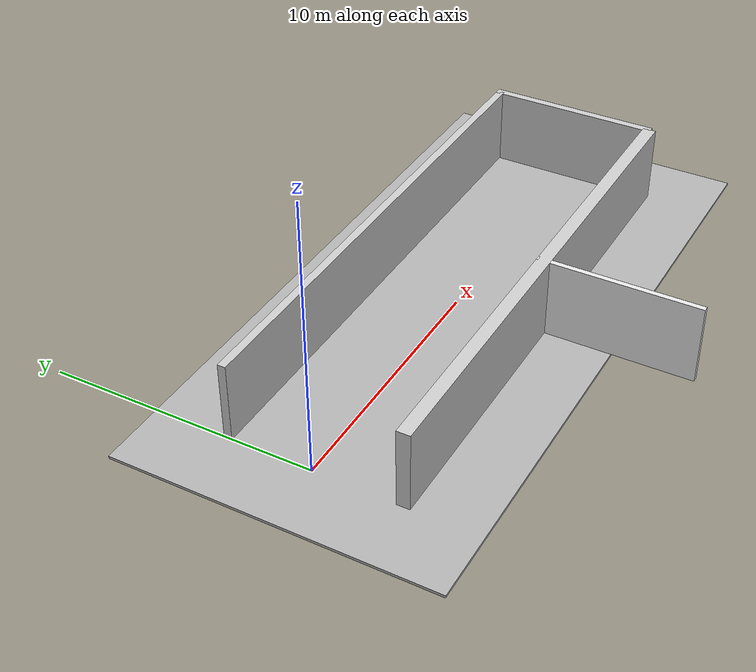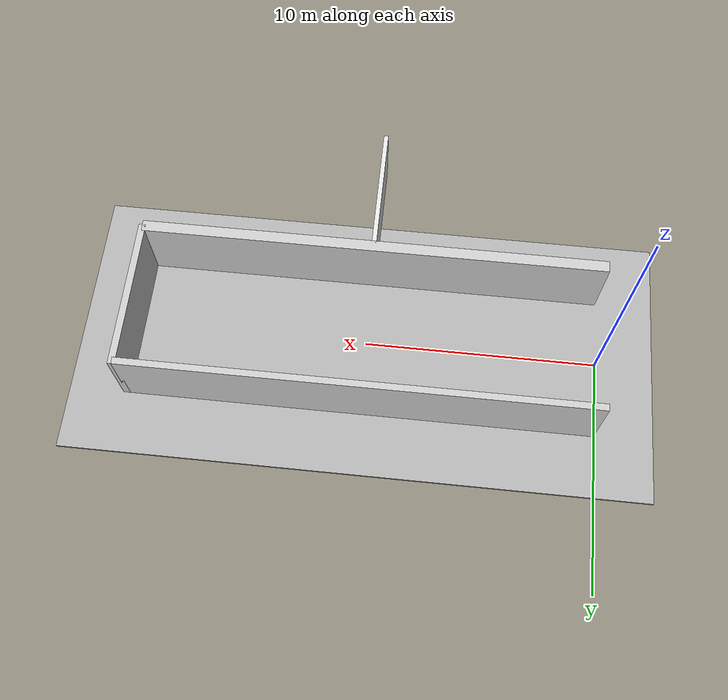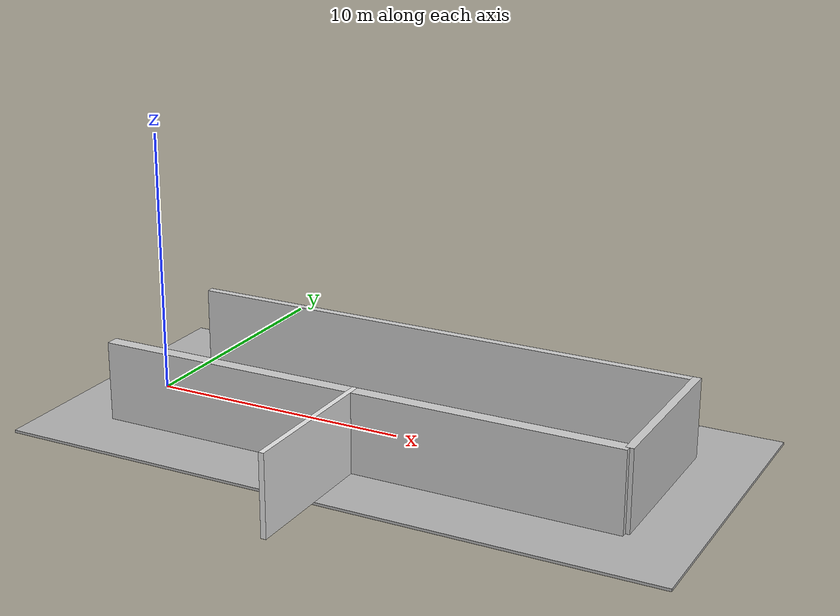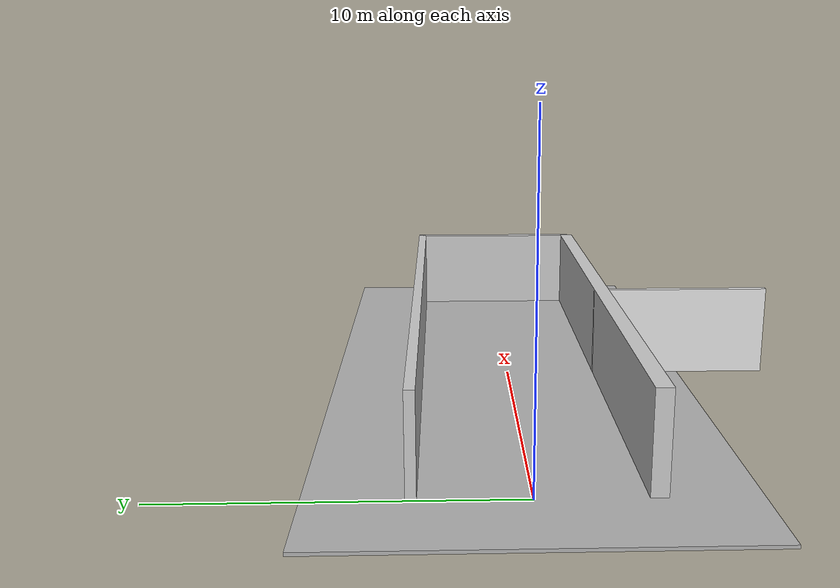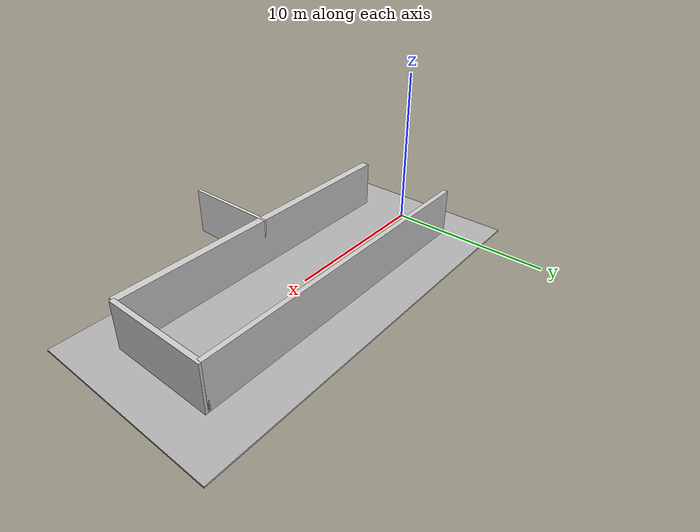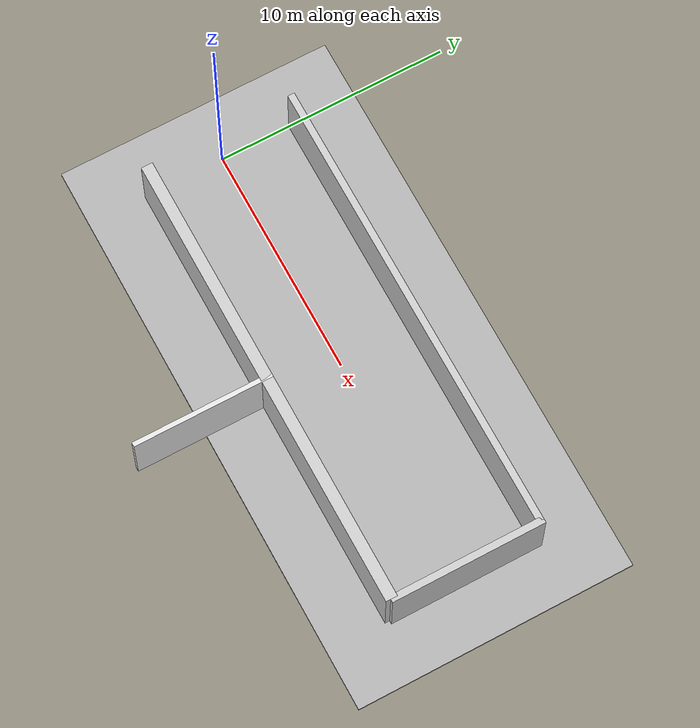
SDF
<?xml version="1.0" ?>

<sdf version="1.9">

  <world name="assignment_world">

    <physics name="1ms" type="ignored">
      <max_step_size>0.001</max_step_size>
      <real_time_factor>1.0</real_time_factor>
    </physics>

    <plugin
      filename="gz-sim-physics-system"
      name="gz::sim::systems::Physics"/>

    <plugin
      filename="gz-sim-user-commands-system"
      name="gz::sim::systems::UserCommands"/>

    <plugin
      filename="gz-sim-scene-broadcaster-system"
      name="gz::sim::systems::SceneBroadcaster"/>

    <plugin
      filename="gz-sim-sensors-system"
      name="gz::sim::systems::Sensors">

      <render_engine>ogre2</render_engine>

    </plugin>

    <!-- Required for the IMU sensor -->
    <plugin
      filename="gz-sim-imu-system"
      name="gz::sim::systems::Imu"/>

    <light
      type="directional"
      name="sun">

      <cast_shadows>true</cast_shadows>

      <pose>10 0 10 0 0 0</pose>

      <diffuse>0.8 0.8 0.8 1</diffuse>

      <specular>0.2 0.2 0.2 1</specular>

      <direction>-0.5 0.1 -0.9</direction>

    </light>

    <model name="ground_plane">

      <static>true</static>

      <pose>10 0 -0.05 0 0 0</pose>

      <link name="link">

        <collision name="collision">

          <geometry>

            <box>
              <size>25 12 0.1</size>
            </box>

          </geometry>

        </collision>

        <visual name="visual">

          <geometry>

            <box>
              <size>25 12 0.1</size>
            </box>

          </geometry>

          <material>

            <ambient>0.5 0.5 0.5 1</ambient>

            <diffuse>0.7 0.7 0.7 1</diffuse>

            <specular>0.1 0.1 0.1 1</specular>

          </material>

        </visual>

      </link>

    </model>

    <model name="north_wall">

      <static>true</static>

      <pose>10 3.15 1.5 0 0 0</pose>

      <link name="link">

        <collision name="collision">

          <geometry>

            <box>
              <size>20 0.3 3</size>
            </box>

          </geometry>

        </collision>

        <visual name="visual">

          <geometry>

            <box>
              <size>20 0.3 3</size>
            </box>

          </geometry>

          <material>

            <ambient>0.6 0.6 0.6 1</ambient>

            <diffuse>0.8 0.8 0.8 1</diffuse>

            <specular>0.1 0.1 0.1 1</specular>

          </material>

        </visual>

      </link>

    </model>

    <model name="south_wall">

      <static>true</static>

      <pose>10 -3.25 1.5 0 0 0</pose>

      <link name="link">

        <collision name="collision">

          <geometry>

            <box>
              <size>20 0.5 3</size>
            </box>

          </geometry>

        </collision>

        <visual name="visual">

          <geometry>

            <box>
              <size>20 0.5 3</size>
            </box>

          </geometry>

          <material>

            <ambient>0.6 0.6 0.6 1</ambient>

            <diffuse>0.8 0.8 0.8 1</diffuse>

            <specular>0.1 0.1 0.1 1</specular>

          </material>

        </visual>

      </link>

    </model>

    <model name="end_wall">

      <static>true</static>

      <pose>20 0 1.5 0 0 0</pose>

      <link name="link">

        <collision name="collision">

          <geometry>

            <box>
              <size>0.3 6.6 3</size>
            </box>

          </geometry>

        </collision>

        <visual name="visual">

          <geometry>

            <box>
              <size>0.3 6.6 3</size>
            </box>

          </geometry>

          <material>

            <ambient>0.6 0.6 0.6 1</ambient>

            <diffuse>0.8 0.8 0.8 1</diffuse>

            <specular>0.1 0.1 0.1 1</specular>

          </material>

        </visual>

      </link>

    </model>

    <model name="shifting_wall">

      <pose>10 -6 1.5 0 0 0</pose>

      <link name="wall_link">

        <inertial>

          <mass>100</mass>

          <inertia>

            <ixx>50</ixx>
            <iyy>50</iyy>
            <izz>50</izz>

            <ixy>0</ixy>
            <ixz>0</ixz>
            <iyz>0</iyz>

          </inertia>

        </inertial>

        <collision name="collision">

          <geometry>

            <box>
              <size>0.2 6.0 3</size>
            </box>

          </geometry>

        </collision>

        <visual name="visual">

          <geometry>

            <box>
              <size>0.2 6.0 3</size>
            </box>

          </geometry>

          <material>

            <ambient>0.7 0.7 0.7 1</ambient>

            <diffuse>0.9 0.9 0.9 1</diffuse>

            <specular>0.1 0.1 0.1 1</specular>

          </material>

        </visual>

      </link>

    </model>

  </world>

</sdf>
